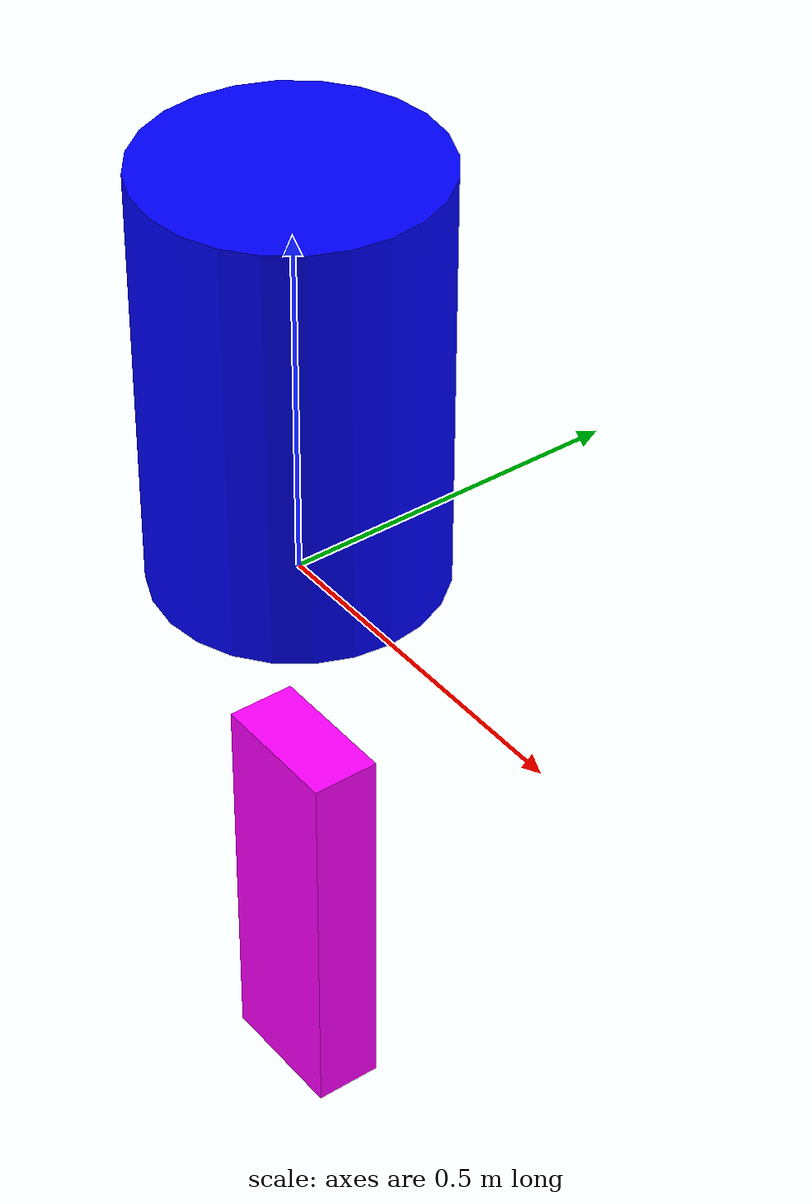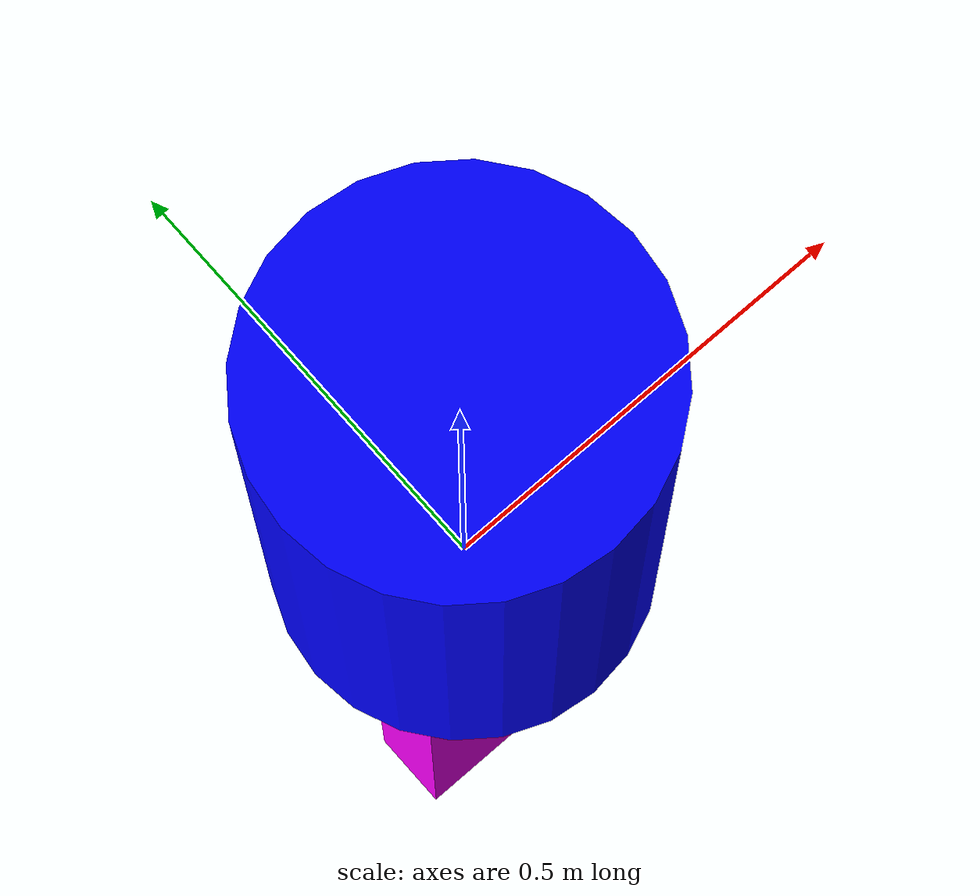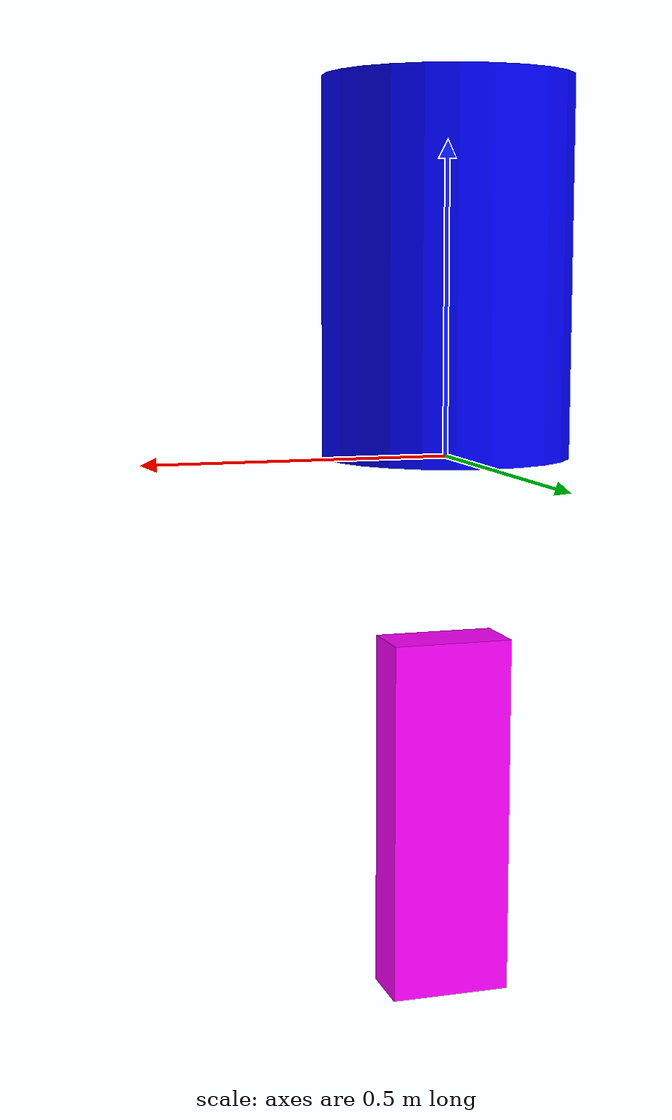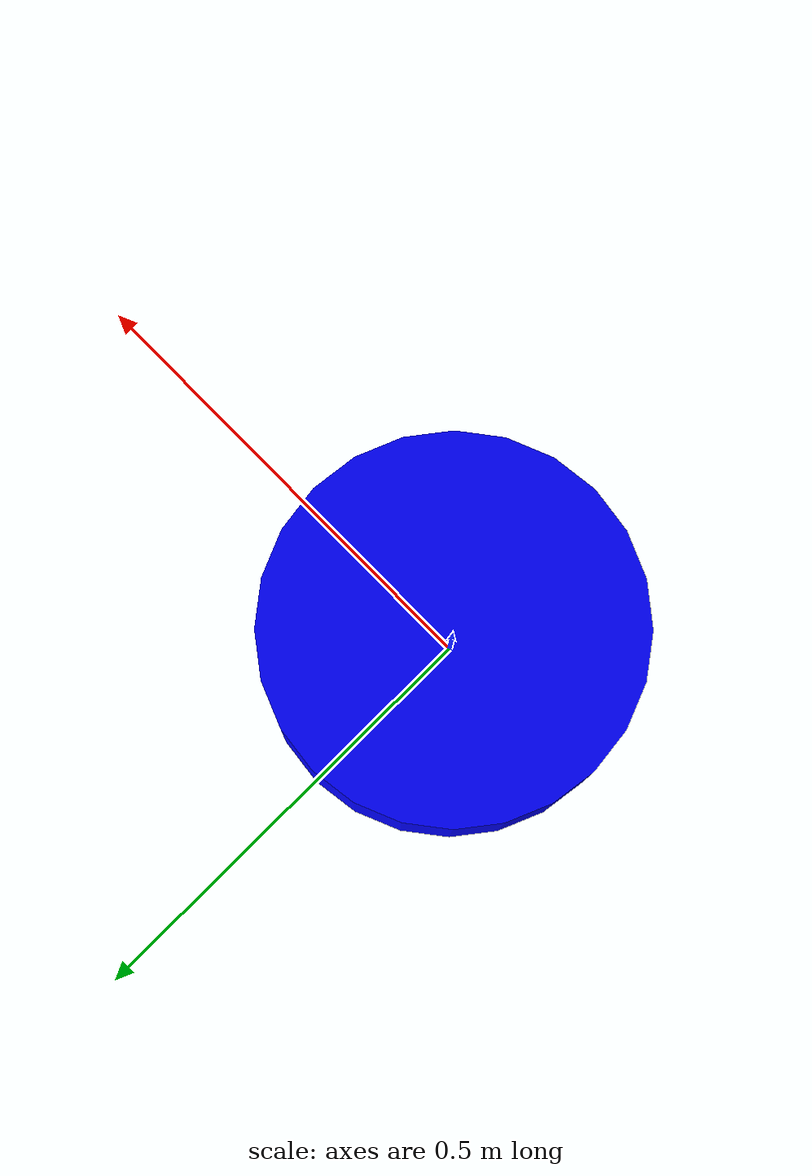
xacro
<?xml version="1.0"?>
<robot name="MonRobot">

  <!-- Base -->
  <link name="Labase">
    <visual>
      <origin xyz="0 0 0.3" rpy="0 0 0"/>
      <geometry>
        <cylinder length="0.6" radius="0.2"/>
      </geometry>
      <material name="yellow">
        <color rgba="0 0 1 "/>
      </material>
    </visual>
    <collision>
      <origin xyz="0 0 0.3" rpy="0 0 0"/>
      <geometry>
        <cylinder length="0.6" radius="0.2"/>
      </geometry>
    </collision>
    <inertial>
      <mass value="1.0"/>
      <inertia ixx="0.01" iyy="0.01" izz="0.01" ixy="0" ixz="0" iyz="0"/>
      <origin xyz="0 0 0.3" rpy="0 0 0"/>
    </inertial>
  </link>

  <!-- Right leg -->
  <link name="right_leg">
    <visual>
      <origin xyz="0 0 -0.3" rpy="0 1.57075 0"/>
      <geometry>
        <box size="0.6 0.1 0.2"/>
      </geometry>
      <material name="red">
        <color rgba="1 0 1 1"/>
      </material>
    </visual>
    <collision>
      <origin xyz="0 0 -0.3" rpy="0 1.57075 0"/>
      <geometry>
        <box size="0.6 0.1 0.2"/>
      </geometry>
    </collision>
    <inertial>
      <mass value="0.5"/>
      <inertia ixx="0.001" iyy="0.001" izz="0.001" ixy="0" ixz="0" iyz="0"/>
      <origin xyz="0 0 -0.3" rpy="0 0 0"/>
    </inertial>
  </link>

  <!-- Joint -->
  <joint name="base_to_right_leg" type="fixed">
    <parent link="Labase"/>
    <child link="right_leg"/>
    <origin xyz="0 0 -0.3" rpy="0 0 0"/>
  </joint>

</robot>
